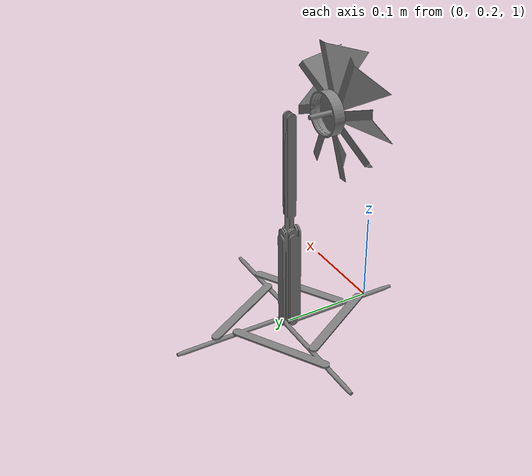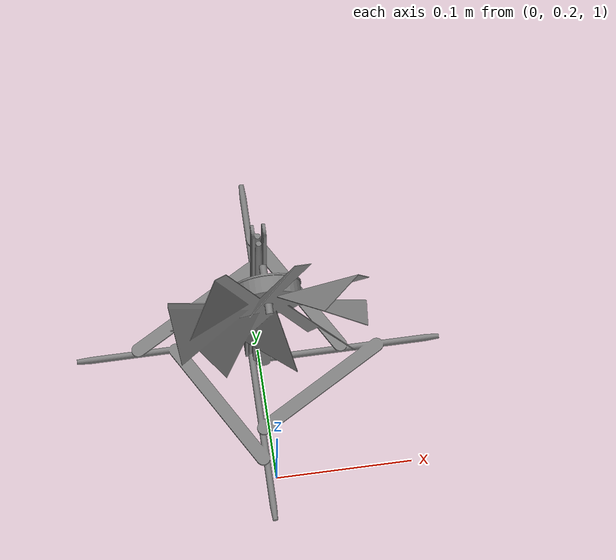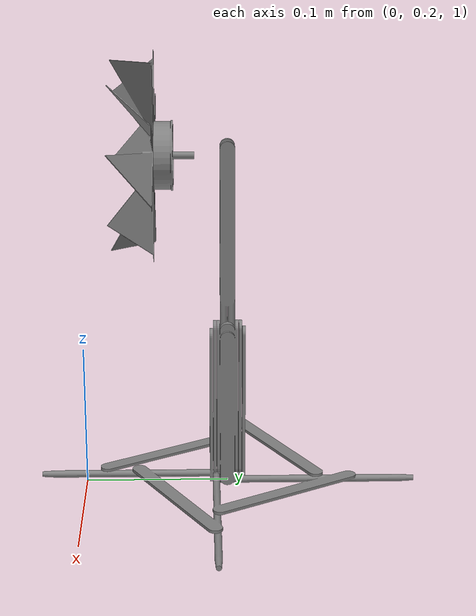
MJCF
<mujoco model="windmill">
  <asset>
    <mesh name="windmill_base"       file="windmill/windmill_base_o.stl"      scale="0.01 0.01 0.01"/>
    <mesh name="windmill_wing"       file="windmill/windmill_wing_o.stl"      scale="0.01 0.01 0.01"/>
  </asset>

  <worldbody>
    <body name="torso" pos="0 0.3 1.0" euler="0 0 0">
      <geom type="mesh" mesh="windmill_base"/>
      <body name="windmill_wing_link" pos="0 -0.03 0.0">
        <joint axis="0 1 0" name="joint1" pos="0 0 0.2389" range="-1.0 1.0" type="hinge"/>
        <geom type="mesh" mesh="windmill_wing"/>
      </body>
    </body>
  </worldbody>

  <actuator>
    <motor gear="200" joint="joint1" name="joint1"/>
  </actuator>

</mujoco>
